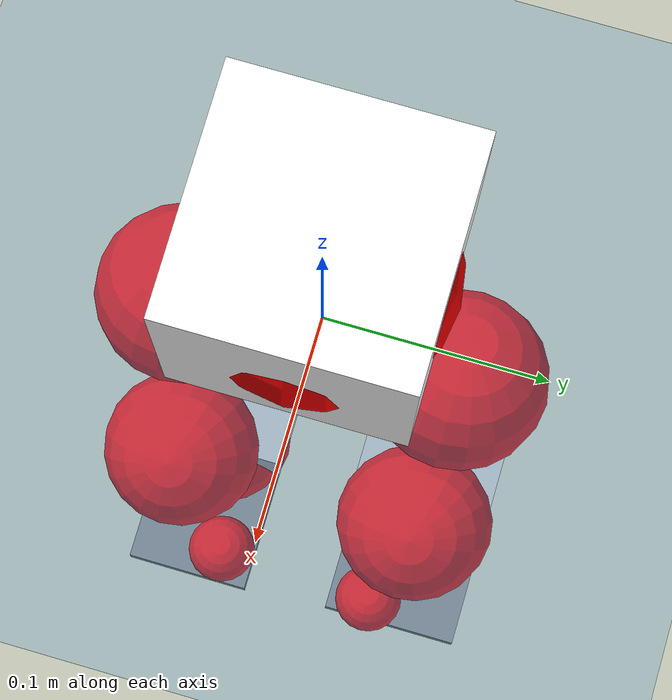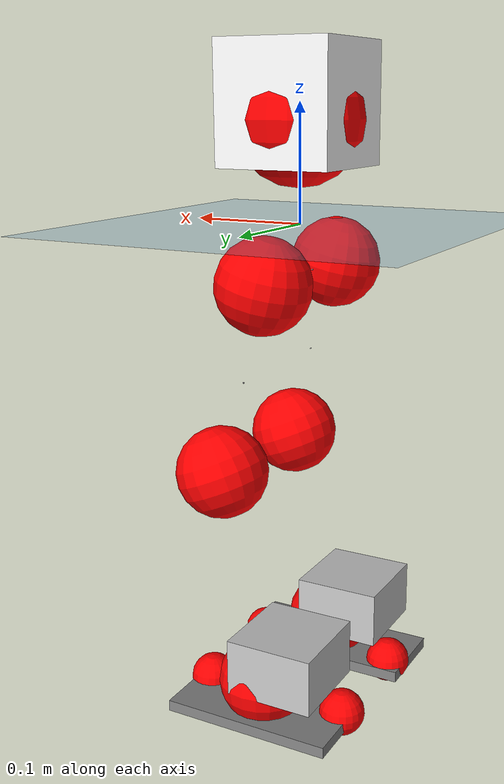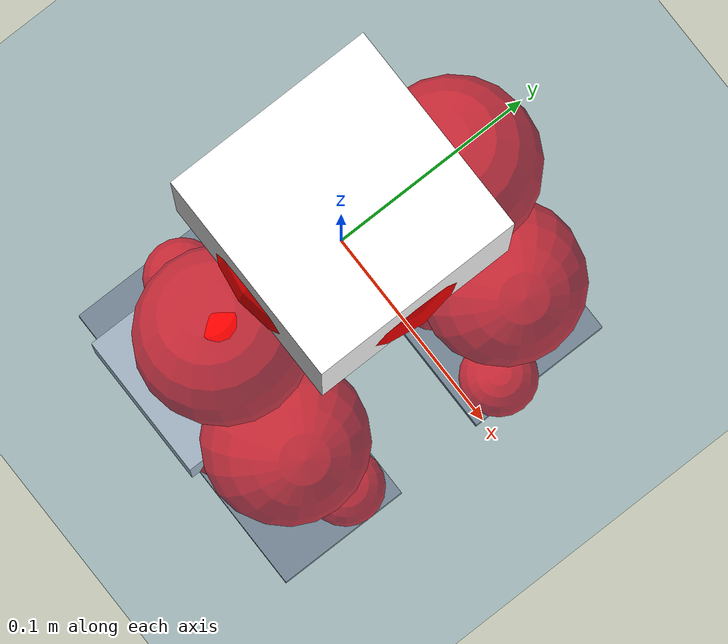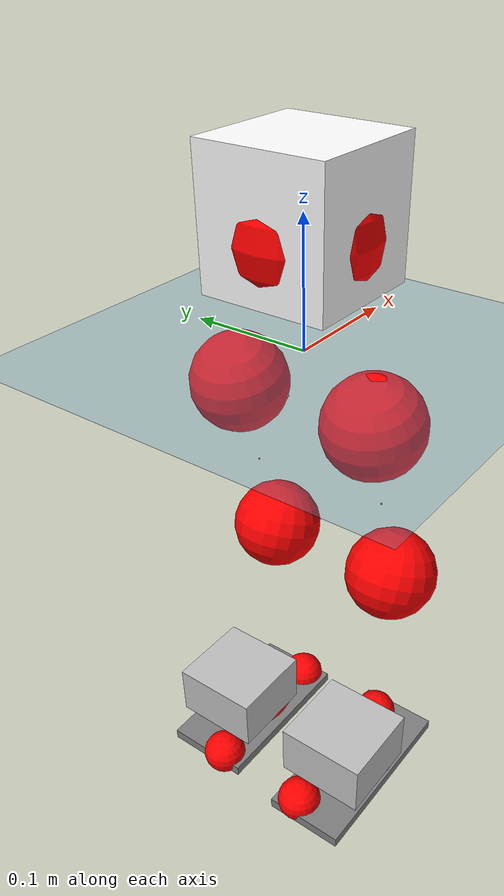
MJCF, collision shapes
<mujoco model="pi_12dof_release_v1">
  <compiler angle="radian" assetdir="assets" balanceinertia="true" inertiafromgeom="false"/>

  <option timestep="0.005" density="1.2" viscosity="2e-05"/>

  <size nkey="1"/>

  <visual>
    <quality shadowsize="8192"/>
    <map shadowclip="0.5"/>
  </visual>

  <default>
    <default class="/">
      <joint armature="0.01" damping="0.01" frictionloss="0.01"/>
      <geom contype="0" conaffinity="0" group="1" solref="-1000 -80"/>
      <site size="0.01 0.005 0.005" group="5"/>
      <general forcelimited="true" biastype="affine" gainprm="20" biasprm="0 -20 -0.5"/>
      <default class="foot">
        <geom size="0.0845 0.036 0.005" type="box" condim="6" group="4" priority="1" friction="0.9 0.2 0.2" solimp="0.015 1 0.005"/>
      </default>
      <default class="reward_collision_sphere">
        <geom group="5" rgba="1 0 0 1"/>
      </default>
    </default>
  </default>

  <asset>
    <texture type="skybox" colorspace="auto" name="//unnamed_texture_0" builtin="gradient" rgb1="0.95 0.95 0.95" rgb2="0.95 0.95 0.95" width="100" height="600"/>
    <texture type="2d" colorspace="auto" name="texplane" builtin="checker" rgb1="0.345 0.575 0.748" rgb2="0.345 0.575 0.748" markrgb="1 1 1" width="512" height="512"/>
    <material name="MatPlane" class="/" texture="texplane" texuniform="true" texrepeat="2 2" specular="0.9"/>
    <mesh name="baselink_1" class="/" file="baselink_1.STL"/>
    <mesh name="r_hip_pitch_link" class="/" file="r_hip_pitch_link.STL"/>
    <mesh name="r_hip_roll_link" class="/" file="r_hip_roll_link.STL"/>
    <mesh name="r_thigh_link" class="/" file="r_thigh_link.STL"/>
    <mesh name="r_calf_link" class="/" file="r_calf_link.STL"/>
    <mesh name="r_ankle_pitch_link" class="/" file="r_ankle_pitch_link.STL"/>
    <mesh name="r_ankle_roll_link" class="/" file="r_ankle_roll_link.STL"/>
    <mesh name="l_hip_pitch_link" class="/" file="l_hip_pitch_link.STL"/>
    <mesh name="l_hip_roll_link" class="/" file="l_hip_roll_link.STL"/>
    <mesh name="l_thigh_link" class="/" file="l_thigh_link.STL"/>
    <mesh name="l_calf_link" class="/" file="l_calf_link.STL"/>
    <mesh name="l_ankle_pitch_link" class="/" file="l_ankle_pitch_link.STL"/>
    <mesh name="l_ankle_roll_link" class="/" file="l_ankle_roll_link.STL"/>
  </asset>

  <worldbody>
    <geom name="floor" class="/" size="100 100 0.125" type="plane" group="0" material="MatPlane"/>
    <light name="toplight_shadow" class="/" pos="0 0 5" dir="0.0990148 0.0990148 -0.990148" type="directional" ambient="0.04 0.04 0.04" diffuse="0.55 0.55 0.55" specular="0.12 0.12 0.12"/>
    <light name="toplight_fill" class="/" pos="0 0 5" dir="0.0990148 0.0990148 -0.990148" type="directional" castshadow="false" ambient="0.04 0.04 0.04" diffuse="0.3 0.3 0.3" specular="0.08 0.08 0.08"/>
    <body name="trunk" pos="0.000970316 -0.000127304 -0.000403081" quat="1 -3.40684e-05 6.20959e-05 0.000170602">
      <inertial pos="-0.000220391 -0.00302394 0.0496821" quat="0.69517 0.0141844 0.0123016 0.7186" mass="2.33701" diaginertia="0.0092889 0.00338472 0.011627"/>
      <joint name="//unnamed_joint_0" type="free"/>
      <geom name="//unnamed_geom_1" class="/" type="mesh" density="0" rgba="1 1 1 1" mesh="baselink_1"/>
      <geom name="//unnamed_geom_2" class="/" size="0.0507248 0.0507248 0.0507248" pos="0 0 0.0984681" type="box" rgba="1 1 1 1"/>
      <geom name="//unnamed_geom_3" class="reward_collision_sphere" size="0.0557973" pos="0 0 0.0861596"/>
      <site name="imu" class="/" pos="0.0136723 0.00081785 -0.0136753" size="0.010145"/>
      <camera name="track" class="/" pos="0 -1.64503 0" quat="0.707107 0.707107 0 0" mode="trackcom"/>
      <camera name="ego_camera" class="/" pos="0.0742591 0 0.221553" quat="-0.5 -0.5 0.5 0.5"/>
      <body name="r_hip_pitch_link" pos="-0.00216301 -0.0209643 -0.0411608" quat="0.9922 3.99397e-05 -0.124658 -8.43672e-05">
        <inertial pos="0.00131302 -0.0487441 -0.000292705" quat="-0.0184869 0.706049 -0.0273504 0.707393" mass="0.378327" diaginertia="0.000100313 3.46289e-05 0.000227603"/>
        <joint name="r_hip_pitch_joint" class="/" pos="0 0 0" axis="-0.00205084 -0.999997 0.000912803" stiffness="0.00946346" range="-1.75637 1.19581" armature="0.00880209" damping="0.0130305" frictionloss="0.0100622"/>
        <geom name="//unnamed_geom_4" class="/" type="mesh" density="0" rgba="0.75294 0.75294 0.75294 1" mesh="r_hip_pitch_link"/>
        <geom name="//unnamed_geom_5" class="/" size="0.000507248 0.000507248 0.000507248" type="box" rgba="0.75294 0.75294 0.75294 1"/>
        <body name="r_hip_roll_link" pos="-0.00130031 -0.0435074 0.00168147" quat="0.999999 0.000248335 -0.0011928 -0.000660514">
          <inertial pos="-0.0020165 4.4567e-05 -0.0748071" quat="0.704147 -0.0714533 -0.0741788 0.702545" mass="0.395546" diaginertia="0.000317412 0.000101358 0.000359846"/>
          <joint name="r_hip_roll_joint" class="/" pos="0 0 0" axis="-0.999943 -0.0105683 -0.00131757" range="-0.133292 0.501553" armature="0.00926222" damping="0" frictionloss="0.0115233"/>
          <geom name="//unnamed_geom_6" class="/" type="mesh" density="0" rgba="0.75294 0.75294 0.75294 1" mesh="r_hip_roll_link"/>
          <geom name="//unnamed_geom_7" class="/" size="0.000507248 0.000507248 0.000507248" type="box" rgba="0.75294 0.75294 0.75294 1"/>
          <geom name="//unnamed_geom_8" class="reward_collision_sphere" size="0.0405798"/>
          <body name="r_thigh_link" pos="0.00209762 0.00298789 -0.0859951" quat="1 -4.64857e-05 0.000329635 -0.000394631">
            <inertial pos="0.000821017 -0.000775698 -0.0592217" quat="0.737846 0.674968 0.00142685 -0.000768748" mass="0.118761" diaginertia="0.0001165 3.59793e-05 0.000163457"/>
            <joint name="r_thigh_joint" class="/" pos="0 0 0" axis="-0.000534537 -0.00384243 -0.999992" range="-0.344438 0.623589" armature="0.0116626" damping="0.000692475" frictionloss="0.0105494"/>
            <geom name="//unnamed_geom_9" class="/" type="mesh" density="0" rgba="0.75294 0.75294 0.75294 1" mesh="r_thigh_link"/>
            <geom name="//unnamed_geom_10" class="/" size="0.000507248 0.000507248 0.000507248" type="box" rgba="0.75294 0.75294 0.75294 1"/>
            <body name="r_calf_link" pos="-0.00215795 -0.002935 -0.0862077" quat="0.947669 -2.15342e-05 0.319253 -5.55416e-05">
              <inertial pos="-0.00225029 -0.00349851 -0.0878286" quat="0.999925 -0.00976932 0.00437496 -0.00589092" mass="0.838582" diaginertia="0.00320847 0.00134628 0.000473206"/>
              <joint name="r_calf_joint" class="/" pos="0 0 0" axis="0.003593 -0.999963 -0.00784128" range="-1.64855 0.649759" armature="0.00978417" damping="0.0140013" frictionloss="0.0101742"/>
              <geom name="//unnamed_geom_11" class="/" type="mesh" density="0" rgba="0.75294 0.75294 0.75294 1" mesh="r_calf_link"/>
              <geom name="//unnamed_geom_12" class="/" size="0.000507248 0.000507248 0.000507248" type="box" rgba="0.75294 0.75294 0.75294 1"/>
              <geom name="//unnamed_geom_13" class="reward_collision_sphere" size="0.0405798"/>
              <body name="r_ankle_pitch_link" pos="0.00176676 0.000139749 -0.17455" quat="0.980302 9.30675e-05 -0.197505 -0.000644792">
                <inertial pos="0.00755489 0.00374771 -0.00152123" quat="0.00772909 0.710113 -0.00181901 0.704043" mass="0.191756" diaginertia="0.000290427 8.18504e-05 0.000354607"/>
                <joint name="r_ankle_pitch_joint" class="/" pos="0 0 0" axis="-0.00755794 -0.999968 0.0025321" range="-1.24382 0.538166" armature="0.0109279" damping="0" frictionloss="0.0102616"/>
                <geom name="//unnamed_geom_14" class="/" type="mesh" density="0" rgba="0.75294 0.75294 0.75294 1" mesh="r_ankle_pitch_link"/>
                <geom name="//unnamed_geom_15" class="/" size="0.0395653 0.0405798 0.0253624" type="box" rgba="0.75294 0.75294 0.75294 1"/>
                <body name="r_ankle_roll_link" pos="0.0737287 0.00155536 0.000484362" quat="1 0.000509975 0.000288218 -0.000259251">
                  <inertial pos="-0.0260906 -9.96178e-06 -0.0175311" quat="0.559121 0.430625 0.444997 0.551292" mass="0.567542" diaginertia="0.00111084 0.000397826 0.000821145"/>
                  <joint name="r_ankle_roll_joint" class="/" pos="0 0 0" axis="-0.999976 0.00483886 -0.00494172" stiffness="0.00165149" range="-0.115148 0.161762" armature="0.0115342" damping="0.0114373" frictionloss="0.00966561"/>
                  <geom name="//unnamed_geom_16" class="/" type="mesh" density="0" rgba="0.75294 0.75294 0.75294 1" mesh="r_ankle_roll_link"/>
                  <geom name="//unnamed_geom_17" class="/" type="mesh" rgba="0.75294 0.75294 0.75294 1" mesh="r_ankle_roll_link"/>
                  <geom name="right_foot" class="foot" size="0.0850954 0.0367312 0.00500899" pos="-0.0504962 0 -0.0541575"/>
                  <geom name="//unnamed_geom_19" class="reward_collision_sphere" size="0.0405798" pos="-0.0495061 0 -0.024617"/>
                  <geom name="//unnamed_geom_20" class="reward_collision_sphere" size="0.0202899" pos="0.0148518 0.0164503 -0.0492341"/>
                  <geom name="//unnamed_geom_21" class="reward_collision_sphere" size="0.0202899" pos="-0.118815 0.0164503 -0.0492341"/>
                  <site name="right_foot" class="foot" pos="-0.0504962 0 -0.0541575" size="0.010145"/>
                </body>
              </body>
            </body>
          </body>
        </body>
      </body>
      <body name="l_hip_pitch_link" pos="0.00218537 0.0173702 -0.043212" quat="0.992198 3.36914e-06 -0.124675 -2.2799e-06">
        <inertial pos="0.00120988 0.0459341 -0.00292872" quat="-0.0364737 0.702306 0.0184186 0.710702" mass="0.421346" diaginertia="0.00013013 4.14608e-05 0.000290355"/>
        <joint name="l_hip_pitch_joint" class="/" pos="0 0 0" axis="-0.00109412 0.999997 0.00238646" range="-1.27099 1.74992" armature="0.0104317" damping="0.0184524" frictionloss="0.00919268"/>
        <geom name="//unnamed_geom_22" class="/" type="mesh" density="0" rgba="0.75294 0.75294 0.75294 1" mesh="l_hip_pitch_link"/>
        <geom name="//unnamed_geom_23" class="/" size="0.000507248 0.000507248 0.000507248" type="box" rgba="0.75294 0.75294 0.75294 1"/>
        <body name="l_hip_roll_link" pos="-0.00261253 0.0458959 0.000919654" quat="1 -0.000137209 0.000109557 -9.43969e-06">
          <inertial pos="-0.00435938 -0.000496856 -0.0775851" quat="0.699266 -0.0752674 -0.0780432 0.706591" mass="0.394938" diaginertia="0.000298815 0.000104414 0.000352653"/>
          <joint name="l_hip_roll_joint" class="/" pos="0 0 0" axis="-0.999997 0.0023385 -0.00103135" stiffness="3.23387e-05" range="-0.508953 0.140878" armature="0.0106565" damping="0.0175341" frictionloss="0.00951312"/>
          <geom name="//unnamed_geom_24" class="/" type="mesh" density="0" rgba="0.75294 0.75294 0.75294 1" mesh="l_hip_roll_link"/>
          <geom name="//unnamed_geom_25" class="/" size="0.000507248 0.000507248 0.000507248" type="box" rgba="0.75294 0.75294 0.75294 1"/>
          <geom name="//unnamed_geom_26" class="reward_collision_sphere" size="0.0405798"/>
          <body name="l_thigh_link" pos="-0.000873611 -0.000505003 -0.0855067" quat="1 -0.000380724 -0.000115046 -8.24217e-06">
            <inertial pos="0.00108659 0.00118135 -0.0580685" quat="0.673512 0.739135 0.00729701 -0.0027139" mass="0.120976" diaginertia="0.000119652 3.79649e-05 0.000167197"/>
            <joint name="l_thigh_joint" class="/" pos="0 0 0" axis="0.000280847 0.000901102 -1" range="-0.654927 0.266336" armature="0.00988558" damping="0.00788265" frictionloss="0.0102538"/>
            <geom name="//unnamed_geom_27" class="/" type="mesh" density="0" rgba="0.75294 0.75294 0.75294 1" mesh="l_thigh_link"/>
            <geom name="//unnamed_geom_28" class="/" size="0.000507248 0.000507248 0.000507248" type="box" rgba="0.75294 0.75294 0.75294 1"/>
            <body name="l_calf_link" pos="0.00170325 -0.000283829 -0.086164" quat="0.947667 0.000324088 0.319259 0.000282997">
              <inertial pos="-0.000998685 0.00314518 -0.0886333" quat="0.999893 0.0144448 -0.00225243 0.000951163" mass="0.848766" diaginertia="0.00324299 0.00127817 0.000476098"/>
              <joint name="l_calf_joint" class="/" pos="0 0 0" axis="0.0111954 0.999922 0.00559999" range="-0.645635 1.64627" armature="0.010158" damping="0" frictionloss="0.0100231"/>
              <geom name="//unnamed_geom_29" class="/" type="mesh" density="0" rgba="0.75294 0.75294 0.75294 1" mesh="l_calf_link"/>
              <geom name="//unnamed_geom_30" class="/" size="0.000507248 0.000507248 0.000507248" type="box" rgba="0.75294 0.75294 0.75294 1"/>
              <geom name="//unnamed_geom_31" class="reward_collision_sphere" size="0.0405798"/>
              <body name="l_ankle_pitch_link" pos="0.00271504 0.000615886 -0.175499" quat="0.979975 -0.000321741 -0.199115 -0.00116434">
                <inertial pos="0.00541033 0.000401901 -0.00107979" quat="-0.00211299 0.707209 0.00197438 0.706998" mass="0.174733" diaginertia="0.000278377 8.17973e-05 0.00033421"/>
                <joint name="l_ankle_pitch_joint" class="/" pos="0 0 0" axis="0.00171141 0.999997 0.00156825" range="-0.528137 1.26868" armature="0.00931526" damping="0.00760096" frictionloss="0.0102198"/>
                <geom name="//unnamed_geom_32" class="/" type="mesh" density="0" rgba="0.75294 0.75294 0.75294 1" mesh="l_ankle_pitch_link"/>
                <geom name="//unnamed_geom_33" class="/" size="0.0395653 0.0405798 0.0253624" type="box" rgba="0.75294 0.75294 0.75294 1"/>
                <body name="l_ankle_roll_link" pos="0.0737608 0.00249256 -0.000151459" quat="0.999999 0.00126501 -0.000269654 5.44289e-05">
                  <inertial pos="-0.0218021 -0.00139818 -0.0187373" quat="0.550492 0.430995 0.438034 0.565091" mass="0.551757" diaginertia="0.00106119 0.00038869 0.000792482"/>
                  <joint name="l_ankle_roll_joint" class="/" pos="0 0 0" axis="-0.999999 -0.000392726 0.00166609" range="-0.0998953 0.1137" armature="0.0115242" damping="0.0227852" frictionloss="0.0103476"/>
                  <geom name="//unnamed_geom_34" class="/" type="mesh" density="0" rgba="0.75294 0.75294 0.75294 1" mesh="l_ankle_roll_link"/>
                  <geom name="//unnamed_geom_35" class="/" type="mesh" rgba="0.75294 0.75294 0.75294 1" mesh="l_ankle_roll_link"/>
                  <geom name="left_foot" class="foot" size="0.0775598 0.0403574 0.00500316" pos="-0.0504962 0 -0.0541575"/>
                  <geom name="//unnamed_geom_37" class="reward_collision_sphere" size="0.0405798" pos="-0.0495061 0 -0.024617"/>
                  <geom name="//unnamed_geom_38" class="reward_collision_sphere" size="0.0202899" pos="0.0148518 -0.0164503 -0.0492341"/>
                  <geom name="//unnamed_geom_39" class="reward_collision_sphere" size="0.0202899" pos="-0.118815 -0.0164503 -0.0492341"/>
                  <site name="left_foot" class="foot" pos="-0.0504962 0 -0.0541575" size="0.010145"/>
                </body>
              </body>
            </body>
          </body>
        </body>
      </body>
    </body>
  </worldbody>

  <contact>
    <pair class="/" geom1="floor" geom2="right_foot" name="//unnamed_contact_1"/>
    <pair class="/" geom1="floor" geom2="left_foot" name="//unnamed_contact_0"/>
  </contact>

  <actuator>
    <general name="r_hip_pitch_joint" class="/" joint="r_hip_pitch_joint" forcerange="-23.3262 23.3262" gainprm="19.1101" biasprm="0 -19.1101 -0.51128"/>
    <general name="r_hip_roll_joint" class="/" joint="r_hip_roll_joint" forcerange="-21.2292 21.2292" gainprm="19.1101" biasprm="0 -19.1101 -0.51128"/>
    <general name="r_thigh_joint" class="/" joint="r_thigh_joint" forcerange="-21.3993 21.3993" gainprm="19.1101" biasprm="0 -19.1101 -0.51128"/>
    <general name="r_calf_joint" class="/" joint="r_calf_joint" forcerange="-23.4707 23.4707" gainprm="19.1101" biasprm="0 -19.1101 -0.51128"/>
    <general name="r_ankle_pitch_joint" class="/" joint="r_ankle_pitch_joint" forcerange="-20.5696 20.5696" gainprm="19.1101" biasprm="0 -19.1101 -0.51128"/>
    <general name="r_ankle_roll_joint" class="/" joint="r_ankle_roll_joint" forcerange="-21.6559 21.6559" gainprm="19.1101" biasprm="0 -19.1101 -0.51128"/>
    <general name="l_hip_pitch_joint" class="/" joint="l_hip_pitch_joint" forcerange="-19.4317 19.4317" gainprm="19.1101" biasprm="0 -19.1101 -0.51128"/>
    <general name="l_hip_roll_joint" class="/" joint="l_hip_roll_joint" forcerange="-19.1627 19.1627" gainprm="19.1101" biasprm="0 -19.1101 -0.51128"/>
    <general name="l_thigh_joint" class="/" joint="l_thigh_joint" forcerange="-21.7024 21.7024" gainprm="19.1101" biasprm="0 -19.1101 -0.51128"/>
    <general name="l_calf_joint" class="/" joint="l_calf_joint" forcerange="-21.6966 21.6966" gainprm="19.1101" biasprm="0 -19.1101 -0.51128"/>
    <general name="l_ankle_pitch_joint" class="/" joint="l_ankle_pitch_joint" forcerange="-22.9395 22.9395" gainprm="19.1101" biasprm="0 -19.1101 -0.51128"/>
    <general name="l_ankle_roll_joint" class="/" joint="l_ankle_roll_joint" forcerange="-22.2009 22.2009" gainprm="19.1101" biasprm="0 -19.1101 -0.51128"/>
  </actuator>

  <sensor>
    <gyro site="imu" name="imu_angular_velocity"/>
    <velocimeter site="imu" name="imu_linear_velocity"/>
    <framelinvel objtype="site" objname="left_foot" name="left_foot_global_linear_velocity"/>
    <framelinvel objtype="site" objname="right_foot" name="right_foot_global_linear_velocity"/>
  </sensor>

  <keyframe>
    <key name="home" qpos="0 0 0.291 1 0 0 0 0.4 0 0 -0.8 0.4 0 -0.4 0 0 0.8 -0.4 0"/>
  </keyframe>
</mujoco>
